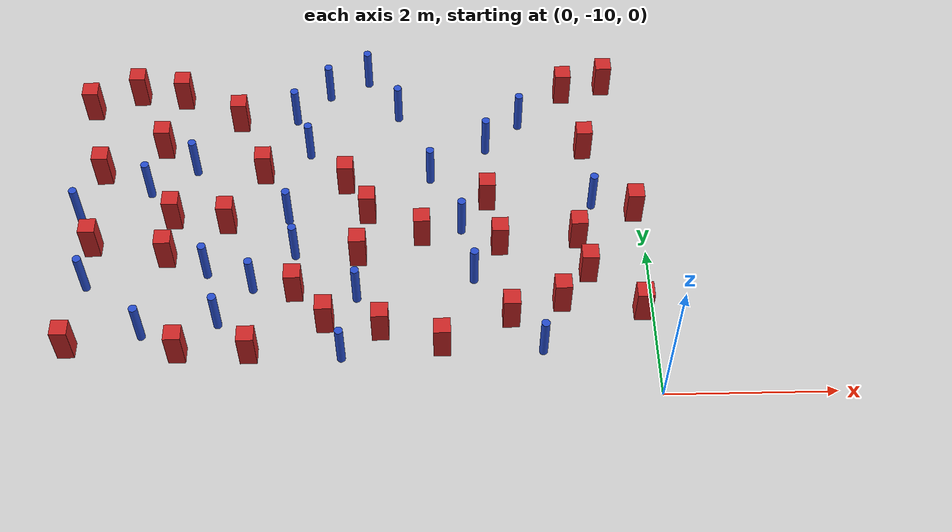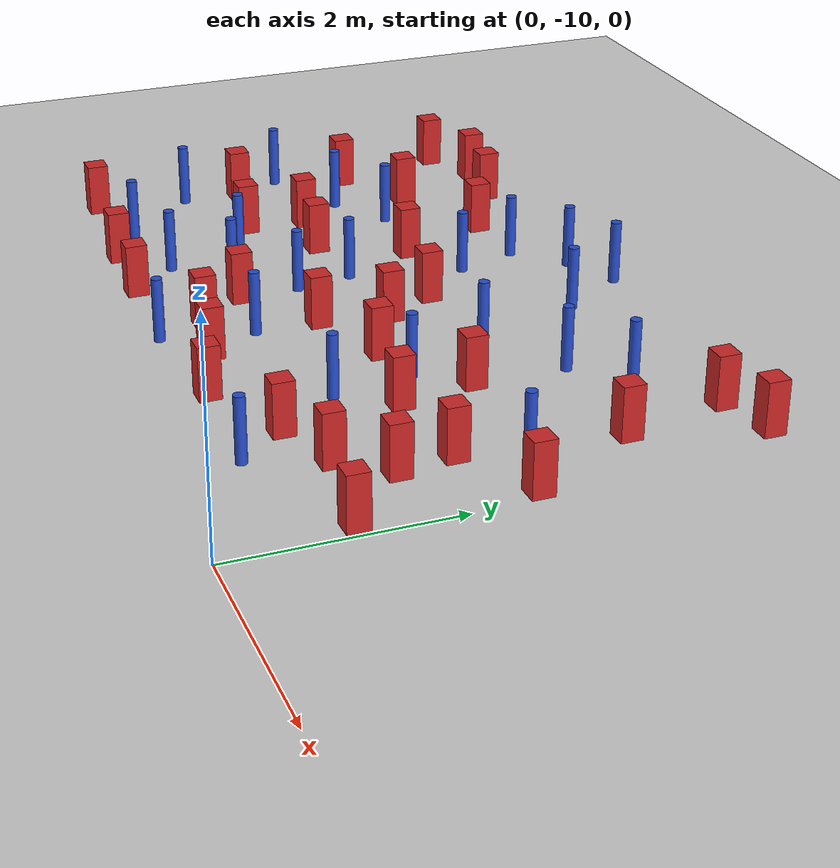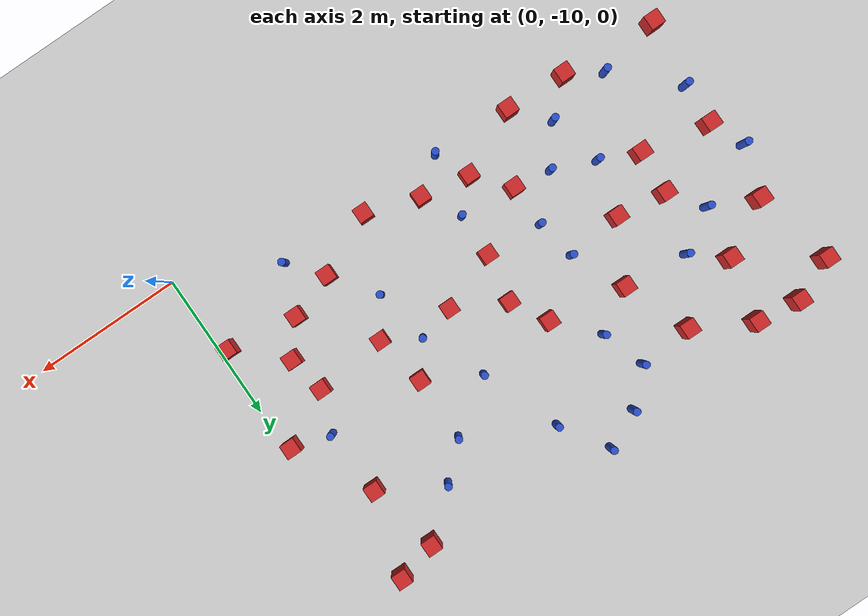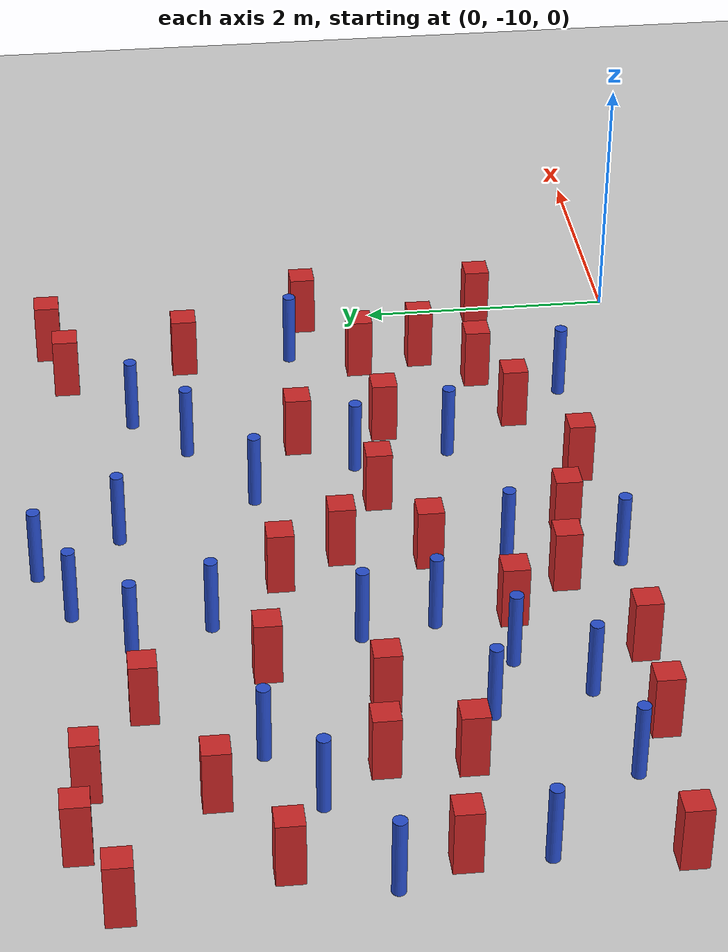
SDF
<sdf version="1.6">
 <world name="default">
  <model name="ground_plane">
   <static>1</static>
   <link name="link">
    <collision name="collision">
     <geometry><plane><normal>0 0 1</normal><size>100 100</size></plane></geometry>
     <surface><friction><ode><mu>100</mu><mu2>50</mu2></ode></friction></surface>
    </collision>
    <visual name="visual">
     <cast_shadows>0</cast_shadows>
     <geometry><plane><normal>0 0 1</normal><size>100 100</size></plane></geometry>
     <material>
      <ambient>1.0 1.0 1.0 1.0</ambient>
      <diffuse>0.8 0.8 0.8 1.0</diffuse>
      <specular>0.01 0.01 0.01 1.000000</specular>
     </material>
    </visual>
   </link>
  </model>
  <model name="square_post_obstacle3">
   <static>true</static>
   <pose>-2.73079464044 -7.73575036207 8.22691968438e-08 7.22125133819e-06 -7.54495500217e-07 2.29674213826e-05</pose>
   <link name="link">
    <pose>0 0 0.25 0 -0 0</pose>
    <inertial>
     <mass>100</mass>
     <inertia>
      <ixx>0.166667</ixx>
      <ixy>0</ixy>
      <ixz>0</ixz>
      <iyy>0.166667</iyy>
      <iyz>0</iyz>
      <izz>0.166667</izz>
     </inertia>
    </inertial>
    <collision name="collision"><geometry><box><size>.2 .2 .5</size></box></geometry></collision>
    <visual name="visual">
     <geometry><box><size>.2 .2 .5</size></box></geometry>
     <material>
      <script><name>Gazebo/Red</name><uri>file://media/materials/scripts/gazebo.material</uri></script>
     </material>
    </visual>
   </link>
  </model>
  <model name="pole_obstacle10">
   <static>true</static>
   <pose>-6.1325217128 -6.95859032905 2.88873142074e-08 -9.90536690842e-09 4.60219948965e-07 -1.20965994976e-07</pose>
   <link name="link">
    <pose>0 0 0.3 0 -0 0</pose>
    <inertial>
     <mass>1</mass>
     <inertia><ixx>0.145833</ixx><ixy>0</ixy><ixz>0</ixz><iyy>0.145833</iyy><iyz>0</iyz><izz>0.125</izz></inertia>
    </inertial>
    <collision name="collision">
     <geometry><cylinder><radius>0.05</radius><length>.6</length></cylinder></geometry>
    </collision>
    <visual name="visual">
     <geometry><cylinder><radius>0.05</radius><length>.6</length></cylinder></geometry>
     <material>
      <script><name>Gazebo/Blue</name><uri>file://media/materials/scripts/gazebo.material</uri></script>
     </material>
    </visual>
   </link>
  </model>
  <model name="square_post_obstacle10">
   <static>true</static>
   <pose>-5.83038132791 -5.41158651365 8.22691968438e-08 7.2212513382e-06 -7.54495500217e-07 2.29674213826e-05</pose>
   <link name="link">
    <pose>0 0 0.25 0 -0 0</pose>
    <inertial>
     <mass>100</mass>
     <inertia>
      <ixx>0.166667</ixx>
      <ixy>0</ixy>
      <ixz>0</ixz>
      <iyy>0.166667</iyy>
      <iyz>0</iyz>
      <izz>0.166667</izz>
     </inertia>
    </inertial>
    <collision name="collision"><geometry><box><size>.2 .2 .5</size></box></geometry></collision>
    <visual name="visual">
     <geometry><box><size>.2 .2 .5</size></box></geometry>
     <material>
      <script><name>Gazebo/Red</name><uri>file://media/materials/scripts/gazebo.material</uri></script>
     </material>
    </visual>
   </link>
  </model>
  <model name="square_post_obstacle12">
   <static>true</static>
   <pose>-4.7514764796 -9.38718271568 8.22691968438e-08 7.2212513382e-06 -7.54495500217e-07 2.29674213826e-05</pose>
   <link name="link">
    <pose>0 0 0.25 0 -0 0</pose>
    <inertial>
     <mass>100</mass>
     <inertia>
      <ixx>0.166667</ixx>
      <ixy>0</ixy>
      <ixz>0</ixz>
      <iyy>0.166667</iyy>
      <iyz>0</iyz>
      <izz>0.166667</izz>
     </inertia>
    </inertial>
    <collision name="collision"><geometry><box><size>.2 .2 .5</size></box></geometry></collision>
    <visual name="visual">
     <geometry><box><size>.2 .2 .5</size></box></geometry>
     <material>
      <script><name>Gazebo/Red</name><uri>file://media/materials/scripts/gazebo.material</uri></script>
     </material>
    </visual>
   </link>
  </model>
  <model name="pole_obstacle18">
   <static>true</static>
   <pose>-3.92017923229 -5.36507998804 2.88873142074e-08 -9.90536689859e-09 4.60219948989e-07 -1.20965994961e-07</pose>
   <link name="link">
    <pose>0 0 0.3 0 -0 0</pose>
    <inertial>
     <mass>1</mass>
     <inertia><ixx>0.145833</ixx><ixy>0</ixy><ixz>0</ixz><iyy>0.145833</iyy><iyz>0</iyz><izz>0.125</izz></inertia>
    </inertial>
    <collision name="collision">
     <geometry><cylinder><radius>0.05</radius><length>.6</length></cylinder></geometry>
    </collision>
    <visual name="visual">
     <geometry><cylinder><radius>0.05</radius><length>.6</length></cylinder></geometry>
     <material>
      <script><name>Gazebo/Blue</name><uri>file://media/materials/scripts/gazebo.material</uri></script>
     </material>
    </visual>
   </link>
  </model>
  <model name="square_post_obstacle16">
   <static>true</static>
   <pose>-1.08222233208 -8.74375302315 8.22691968438e-08 7.22125133819e-06 -7.54495500217e-07 2.29674213826e-05</pose>
   <link name="link">
    <pose>0 0 0.25 0 -0 0</pose>
    <inertial>
     <mass>100</mass>
     <inertia>
      <ixx>0.166667</ixx>
      <ixy>0</ixy>
      <ixz>0</ixz>
      <iyy>0.166667</iyy>
      <iyz>0</iyz>
      <izz>0.166667</izz>
     </inertia>
    </inertial>
    <collision name="collision"><geometry><box><size>.2 .2 .5</size></box></geometry></collision>
    <visual name="visual">
     <geometry><box><size>.2 .2 .5</size></box></geometry>
     <material>
      <script><name>Gazebo/Red</name><uri>file://media/materials/scripts/gazebo.material</uri></script>
     </material>
    </visual>
   </link>
  </model>
  <model name="pole_obstacle23">
   <static>true</static>
   <pose>-3.01974893808 -5.75024698525 2.88873142074e-08 -9.90536692062e-09 4.60219948937e-07 -1.20965994985e-07</pose>
   <link name="link">
    <pose>0 0 0.3 0 -0 0</pose>
    <inertial>
     <mass>1</mass>
     <inertia><ixx>0.145833</ixx><ixy>0</ixy><ixz>0</ixz><iyy>0.145833</iyy><iyz>0</iyz><izz>0.125</izz></inertia>
    </inertial>
    <collision name="collision">
     <geometry><cylinder><radius>0.05</radius><length>.6</length></cylinder></geometry>
    </collision>
    <visual name="visual">
     <geometry><cylinder><radius>0.05</radius><length>.6</length></cylinder></geometry>
     <material>
      <script><name>Gazebo/Blue</name><uri>file://media/materials/scripts/gazebo.material</uri></script>
     </material>
    </visual>
   </link>
  </model>
  <model name="pole_obstacle26">
   <static>true</static>
   <pose>-1.90550343805 -6.33166969712 2.88873142074e-08 -9.90536689852e-09 4.60219948989e-07 -1.2096599496e-07</pose>
   <link name="link">
    <pose>0 0 0.3 0 -0 0</pose>
    <inertial>
     <mass>1</mass>
     <inertia><ixx>0.145833</ixx><ixy>0</ixy><ixz>0</ixz><iyy>0.145833</iyy><iyz>0</iyz><izz>0.125</izz></inertia>
    </inertial>
    <collision name="collision">
     <geometry><cylinder><radius>0.05</radius><length>.6</length></cylinder></geometry>
    </collision>
    <visual name="visual">
     <geometry><cylinder><radius>0.05</radius><length>.6</length></cylinder></geometry>
     <material>
      <script><name>Gazebo/Blue</name><uri>file://media/materials/scripts/gazebo.material</uri></script>
     </material>
    </visual>
   </link>
  </model>
  <model name="pole_obstacle27">
   <static>true</static>
   <pose>-3.51837468244 -8.60839087726 2.88873142074e-08 -9.9053668994e-09 4.60219948987e-07 -1.20965994963e-07</pose>
   <link name="link">
    <pose>0 0 0.3 0 -0 0</pose>
    <inertial>
     <mass>1</mass>
     <inertia><ixx>0.145833</ixx><ixy>0</ixy><ixz>0</ixz><iyy>0.145833</iyy><iyz>0</iyz><izz>0.125</izz></inertia>
    </inertial>
    <collision name="collision">
     <geometry><cylinder><radius>0.05</radius><length>.6</length></cylinder></geometry>
    </collision>
    <visual name="visual">
     <geometry><cylinder><radius>0.05</radius><length>.6</length></cylinder></geometry>
     <material>
      <script><name>Gazebo/Blue</name><uri>file://media/materials/scripts/gazebo.material</uri></script>
     </material>
    </visual>
   </link>
  </model>
  <model name="square_post_obstacle36">
   <static>true</static>
   <pose>-0.328504360602 -5.28252003107 8.22691968438e-08 7.2212513382e-06 -7.54495500217e-07 2.29674213826e-05</pose>
   <link name="link">
    <pose>0 0 0.25 0 -0 0</pose>
    <inertial>
     <mass>100</mass>
     <inertia>
      <ixx>0.166667</ixx>
      <ixy>0</ixy>
      <ixz>0</ixz>
      <iyy>0.166667</iyy>
      <iyz>0</iyz>
      <izz>0.166667</izz>
     </inertia>
    </inertial>
    <collision name="collision"><geometry><box><size>.2 .2 .5</size></box></geometry></collision>
    <visual name="visual">
     <geometry><box><size>.2 .2 .5</size></box></geometry>
     <material>
      <script><name>Gazebo/Red</name><uri>file://media/materials/scripts/gazebo.material</uri></script>
     </material>
    </visual>
   </link>
  </model>
  <model name="square_post_obstacle38">
   <static>true</static>
   <pose>-1.69386002984 -8.95137766015 8.22691968438e-08 7.2212513382e-06 -7.54495500217e-07 2.29674213826e-05</pose>
   <link name="link">
    <pose>0 0 0.25 0 -0 0</pose>
    <inertial>
     <mass>100</mass>
     <inertia>
      <ixx>0.166667</ixx>
      <ixy>0</ixy>
      <ixz>0</ixz>
      <iyy>0.166667</iyy>
      <iyz>0</iyz>
      <izz>0.166667</izz>
     </inertia>
    </inertial>
    <collision name="collision"><geometry><box><size>.2 .2 .5</size></box></geometry></collision>
    <visual name="visual">
     <geometry><box><size>.2 .2 .5</size></box></geometry>
     <material>
      <script><name>Gazebo/Red</name><uri>file://media/materials/scripts/gazebo.material</uri></script>
     </material>
    </visual>
   </link>
  </model>
  <model name="pole_obstacle54">
   <static>true</static>
   <pose>-4.34515250309 -5.77988089212 2.88873142074e-08 -9.90536690842e-09 4.60219948965e-07 -1.20965994976e-07</pose>
   <link name="link">
    <pose>0 0 0.3 0 -0 0</pose>
    <inertial>
     <mass>1</mass>
     <inertia><ixx>0.145833</ixx><ixy>0</ixy><ixz>0</ixz><iyy>0.145833</iyy><iyz>0</iyz><izz>0.125</izz></inertia>
    </inertial>
    <collision name="collision">
     <geometry><cylinder><radius>0.05</radius><length>.6</length></cylinder></geometry>
    </collision>
    <visual name="visual">
     <geometry><cylinder><radius>0.05</radius><length>.6</length></cylinder></geometry>
     <material>
      <script><name>Gazebo/Blue</name><uri>file://media/materials/scripts/gazebo.material</uri></script>
     </material>
    </visual>
   </link>
  </model>
  <model name="pole_obstacle63">
   <static>true</static>
   <pose>-4.38031043211 -7.42041262322 2.88873142074e-08 -9.90536690842e-09 4.60219948965e-07 -1.20965994976e-07</pose>
   <link name="link">
    <pose>0 0 0.3 0 -0 0</pose>
    <inertial>
     <mass>1</mass>
     <inertia><ixx>0.145833</ixx><ixy>0</ixy><ixz>0</ixz><iyy>0.145833</iyy><iyz>0</iyz><izz>0.125</izz></inertia>
    </inertial>
    <collision name="collision">
     <geometry><cylinder><radius>0.05</radius><length>.6</length></cylinder></geometry>
    </collision>
    <visual name="visual">
     <geometry><cylinder><radius>0.05</radius><length>.6</length></cylinder></geometry>
     <material>
      <script><name>Gazebo/Blue</name><uri>file://media/materials/scripts/gazebo.material</uri></script>
     </material>
    </visual>
   </link>
  </model>
  <model name="pole_obstacle83">
   <static>true</static>
   <pose>-2.11278924796 -8.36695237378 2.88873142074e-08 -9.90536692318e-09 4.6021994893e-07 -1.20965994988e-07</pose>
   <link name="link">
    <pose>0 0 0.3 0 -0 0</pose>
    <inertial>
     <mass>1</mass>
     <inertia><ixx>0.145833</ixx><ixy>0</ixy><ixz>0</ixz><iyy>0.145833</iyy><iyz>0</iyz><izz>0.125</izz></inertia>
    </inertial>
    <collision name="collision">
     <geometry><cylinder><radius>0.05</radius><length>.6</length></cylinder></geometry>
    </collision>
    <visual name="visual">
     <geometry><cylinder><radius>0.05</radius><length>.6</length></cylinder></geometry>
     <material>
      <script><name>Gazebo/Blue</name><uri>file://media/materials/scripts/gazebo.material</uri></script>
     </material>
    </visual>
   </link>
  </model>
  <model name="square_post_obstacle73">
   <static>true</static>
   <pose>-4.70877246993 -6.71362364644 8.22691968438e-08 7.22125133819e-06 -7.54495500217e-07 2.29674213826e-05</pose>
   <link name="link">
    <pose>0 0 0.25 0 -0 0</pose>
    <inertial>
     <mass>100</mass>
     <inertia>
      <ixx>0.166667</ixx>
      <ixy>0</ixy>
      <ixz>0</ixz>
      <iyy>0.166667</iyy>
      <iyz>0</iyz>
      <izz>0.166667</izz>
     </inertia>
    </inertial>
    <collision name="collision"><geometry><box><size>.2 .2 .5</size></box></geometry></collision>
    <visual name="visual">
     <geometry><box><size>.2 .2 .5</size></box></geometry>
     <material>
      <script><name>Gazebo/Red</name><uri>file://media/materials/scripts/gazebo.material</uri></script>
     </material>
    </visual>
   </link>
  </model>
  <model name="pole_obstacle87">
   <static>true</static>
   <pose>-3.41714059134 -5.1272485014 2.88873142074e-08 -9.90536689859e-09 4.60219948989e-07 -1.20965994961e-07</pose>
   <link name="link">
    <pose>0 0 0.3 0 -0 0</pose>
    <inertial>
     <mass>1</mass>
     <inertia><ixx>0.145833</ixx><ixy>0</ixy><ixz>0</ixz><iyy>0.145833</iyy><iyz>0</iyz><izz>0.125</izz></inertia>
    </inertial>
    <collision name="collision">
     <geometry><cylinder><radius>0.05</radius><length>.6</length></cylinder></geometry>
    </collision>
    <visual name="visual">
     <geometry><cylinder><radius>0.05</radius><length>.6</length></cylinder></geometry>
     <material>
      <script><name>Gazebo/Blue</name><uri>file://media/materials/scripts/gazebo.material</uri></script>
     </material>
    </visual>
   </link>
  </model>
  <model name="square_post_obstacle79">
   <static>true</static>
   <pose>-6.99870042464 -5.57825343169 8.22691968438e-08 7.22125133819e-06 -7.54495500217e-07 2.29674213826e-05</pose>
   <link name="link">
    <pose>0 0 0.25 0 -0 0</pose>
    <inertial>
     <mass>100</mass>
     <inertia>
      <ixx>0.166667</ixx>
      <ixy>0</ixy>
      <ixz>0</ixz>
      <iyy>0.166667</iyy>
      <iyz>0</iyz>
      <izz>0.166667</izz>
     </inertia>
    </inertial>
    <collision name="collision"><geometry><box><size>.2 .2 .5</size></box></geometry></collision>
    <visual name="visual">
     <geometry><box><size>.2 .2 .5</size></box></geometry>
     <material>
      <script><name>Gazebo/Red</name><uri>file://media/materials/scripts/gazebo.material</uri></script>
     </material>
    </visual>
   </link>
  </model>
  <model name="square_post_obstacle81">
   <static>true</static>
   <pose>-3.88198724504 -8.97816053009 8.22691968438e-08 7.22125133819e-06 -7.54495500217e-07 2.29674213826e-05</pose>
   <link name="link">
    <pose>0 0 0.25 0 -0 0</pose>
    <inertial>
     <mass>100</mass>
     <inertia>
      <ixx>0.166667</ixx>
      <ixy>0</ixy>
      <ixz>0</ixz>
      <iyy>0.166667</iyy>
      <iyz>0</iyz>
      <izz>0.166667</izz>
     </inertia>
    </inertial>
    <collision name="collision"><geometry><box><size>.2 .2 .5</size></box></geometry></collision>
    <visual name="visual">
     <geometry><box><size>.2 .2 .5</size></box></geometry>
     <material>
      <script><name>Gazebo/Red</name><uri>file://media/materials/scripts/gazebo.material</uri></script>
     </material>
    </visual>
   </link>
  </model>
  <model name="pole_obstacle90">
   <static>true</static>
   <pose>-5.58245257167 -6.61304634531 2.88873142074e-08 -9.90536690842e-09 4.60219948965e-07 -1.20965994976e-07</pose>
   <link name="link">
    <pose>0 0 0.3 0 -0 0</pose>
    <inertial>
     <mass>1</mass>
     <inertia><ixx>0.145833</ixx><ixy>0</ixy><ixz>0</ixz><iyy>0.145833</iyy><iyz>0</iyz><izz>0.125</izz></inertia>
    </inertial>
    <collision name="collision">
     <geometry><cylinder><radius>0.05</radius><length>.6</length></cylinder></geometry>
    </collision>
    <visual name="visual">
     <geometry><cylinder><radius>0.05</radius><length>.6</length></cylinder></geometry>
     <material>
      <script><name>Gazebo/Blue</name><uri>file://media/materials/scripts/gazebo.material</uri></script>
     </material>
    </visual>
   </link>
  </model>
  <model name="square_post_obstacle84">
   <static>true</static>
   <pose>-4.26040948344 -8.52993712945 8.22691968438e-08 7.22125133819e-06 -7.54495500217e-07 2.29674213826e-05</pose>
   <link name="link">
    <pose>0 0 0.25 0 -0 0</pose>
    <inertial>
     <mass>100</mass>
     <inertia>
      <ixx>0.166667</ixx>
      <ixy>0</ixy>
      <ixz>0</ixz>
      <iyy>0.166667</iyy>
      <iyz>0</iyz>
      <izz>0.166667</izz>
     </inertia>
    </inertial>
    <collision name="collision"><geometry><box><size>.2 .2 .5</size></box></geometry></collision>
    <visual name="visual">
     <geometry><box><size>.2 .2 .5</size></box></geometry>
     <material>
      <script><name>Gazebo/Red</name><uri>file://media/materials/scripts/gazebo.material</uri></script>
     </material>
    </visual>
   </link>
  </model>
  <model name="pole_obstacle92">
   <static>true</static>
   <pose>-3.68303842022 -9.44137427537 2.88873142074e-08 -9.90536692318e-09 4.6021994893e-07 -1.20965994988e-07</pose>
   <link name="link">
    <pose>0 0 0.3 0 -0 0</pose>
    <inertial>
     <mass>1</mass>
     <inertia><ixx>0.145833</ixx><ixy>0</ixy><ixz>0</ixz><iyy>0.145833</iyy><iyz>0</iyz><izz>0.125</izz></inertia>
    </inertial>
    <collision name="collision">
     <geometry><cylinder><radius>0.05</radius><length>.6</length></cylinder></geometry>
    </collision>
    <visual name="visual">
     <geometry><cylinder><radius>0.05</radius><length>.6</length></cylinder></geometry>
     <material>
      <script><name>Gazebo/Blue</name><uri>file://media/materials/scripts/gazebo.material</uri></script>
     </material>
    </visual>
   </link>
  </model>
  <model name="square_post_obstacle89">
   <static>true</static>
   <pose>-5.82998692314 -7.99534103352 8.22691968438e-08 7.2212513382e-06 -7.54495500217e-07 2.29674213826e-05</pose>
   <link name="link">
    <pose>0 0 0.25 0 -0 0</pose>
    <inertial>
     <mass>100</mass>
     <inertia>
      <ixx>0.166667</ixx>
      <ixy>0</ixy>
      <ixz>0</ixz>
      <iyy>0.166667</iyy>
      <iyz>0</iyz>
      <izz>0.166667</izz>
     </inertia>
    </inertial>
    <collision name="collision"><geometry><box><size>.2 .2 .5</size></box></geometry></collision>
    <visual name="visual">
     <geometry><box><size>.2 .2 .5</size></box></geometry>
     <material>
      <script><name>Gazebo/Red</name><uri>file://media/materials/scripts/gazebo.material</uri></script>
     </material>
    </visual>
   </link>
  </model>
  <model name="pole_obstacle102">
   <static>true</static>
   <pose>-1.46734934291 -5.92242371016 2.88873142074e-08 -9.90536689852e-09 4.60219948989e-07 -1.2096599496e-07</pose>
   <link name="link">
    <pose>0 0 0.3 0 -0 0</pose>
    <inertial>
     <mass>1</mass>
     <inertia><ixx>0.145833</ixx><ixy>0</ixy><ixz>0</ixz><iyy>0.145833</iyy><iyz>0</iyz><izz>0.125</izz></inertia>
    </inertial>
    <collision name="collision">
     <geometry><cylinder><radius>0.05</radius><length>.6</length></cylinder></geometry>
    </collision>
    <visual name="visual">
     <geometry><cylinder><radius>0.05</radius><length>.6</length></cylinder></geometry>
     <material>
      <script><name>Gazebo/Blue</name><uri>file://media/materials/scripts/gazebo.material</uri></script>
     </material>
    </visual>
   </link>
  </model>
  <model name="square_post_obstacle98">
   <static>true</static>
   <pose>-5.12732766851 -7.49774417018 8.22691968438e-08 7.22125133819e-06 -7.54495500217e-07 2.29674213826e-05</pose>
   <link name="link">
    <pose>0 0 0.25 0 -0 0</pose>
    <inertial>
     <mass>100</mass>
     <inertia>
      <ixx>0.166667</ixx>
      <ixy>0</ixy>
      <ixz>0</ixz>
      <iyy>0.166667</iyy>
      <iyz>0</iyz>
      <izz>0.166667</izz>
     </inertia>
    </inertial>
    <collision name="collision"><geometry><box><size>.2 .2 .5</size></box></geometry></collision>
    <visual name="visual">
     <geometry><box><size>.2 .2 .5</size></box></geometry>
     <material>
      <script><name>Gazebo/Red</name><uri>file://media/materials/scripts/gazebo.material</uri></script>
     </material>
    </visual>
   </link>
  </model>
  <model name="pole_obstacle104">
   <static>true</static>
   <pose>-4.27780715245 -7.96412719039 2.88873142074e-08 -9.90536690264e-09 4.60219948979e-07 -1.20965994965e-07</pose>
   <link name="link">
    <pose>0 0 0.3 0 -0 0</pose>
    <inertial>
     <mass>1</mass>
     <inertia><ixx>0.145833</ixx><ixy>0</ixy><ixz>0</ixz><iyy>0.145833</iyy><iyz>0</iyz><izz>0.125</izz></inertia>
    </inertial>
    <collision name="collision">
     <geometry><cylinder><radius>0.05</radius><length>.6</length></cylinder></geometry>
    </collision>
    <visual name="visual">
     <geometry><cylinder><radius>0.05</radius><length>.6</length></cylinder></geometry>
     <material>
      <script><name>Gazebo/Blue</name><uri>file://media/materials/scripts/gazebo.material</uri></script>
     </material>
    </visual>
   </link>
  </model>
  <model name="pole_obstacle105">
   <static>true</static>
   <pose>-5.14939158364 -8.94875034224 2.88873142074e-08 -9.9053668967e-09 4.60219948993e-07 -1.20965994957e-07</pose>
   <link name="link">
    <pose>0 0 0.3 0 -0 0</pose>
    <inertial>
     <mass>1</mass>
     <inertia><ixx>0.145833</ixx><ixy>0</ixy><ixz>0</ixz><iyy>0.145833</iyy><iyz>0</iyz><izz>0.125</izz></inertia>
    </inertial>
    <collision name="collision">
     <geometry><cylinder><radius>0.05</radius><length>.6</length></cylinder></geometry>
    </collision>
    <visual name="visual">
     <geometry><cylinder><radius>0.05</radius><length>.6</length></cylinder></geometry>
     <material>
      <script><name>Gazebo/Blue</name><uri>file://media/materials/scripts/gazebo.material</uri></script>
     </material>
    </visual>
   </link>
  </model>
  <model name="pole_obstacle107">
   <static>true</static>
   <pose>-2.24457041051 -7.61838369653 2.88873142074e-08 -9.90536689859e-09 4.60219948989e-07 -1.20965994961e-07</pose>
   <link name="link">
    <pose>0 0 0.3 0 -0 0</pose>
    <inertial>
     <mass>1</mass>
     <inertia><ixx>0.145833</ixx><ixy>0</ixy><ixz>0</ixz><iyy>0.145833</iyy><iyz>0</iyz><izz>0.125</izz></inertia>
    </inertial>
    <collision name="collision">
     <geometry><cylinder><radius>0.05</radius><length>.6</length></cylinder></geometry>
    </collision>
    <visual name="visual">
     <geometry><cylinder><radius>0.05</radius><length>.6</length></cylinder></geometry>
     <material>
      <script><name>Gazebo/Blue</name><uri>file://media/materials/scripts/gazebo.material</uri></script>
     </material>
    </visual>
   </link>
  </model>
  <model name="pole_obstacle118">
   <static>true</static>
   <pose>-5.32962824016 -8.2214934062 2.88873142074e-08 -9.9053668967e-09 4.60219948993e-07 -1.20965994957e-07</pose>
   <link name="link">
    <pose>0 0 0.3 0 -0 0</pose>
    <inertial>
     <mass>1</mass>
     <inertia><ixx>0.145833</ixx><ixy>0</ixy><ixz>0</ixz><iyy>0.145833</iyy><iyz>0</iyz><izz>0.125</izz></inertia>
    </inertial>
    <collision name="collision">
     <geometry><cylinder><radius>0.05</radius><length>.6</length></cylinder></geometry>
    </collision>
    <visual name="visual">
     <geometry><cylinder><radius>0.05</radius><length>.6</length></cylinder></geometry>
     <material>
      <script><name>Gazebo/Blue</name><uri>file://media/materials/scripts/gazebo.material</uri></script>
     </material>
    </visual>
   </link>
  </model>
  <model name="square_post_obstacle120">
   <static>true</static>
   <pose>-0.869060389575 -5.41750941684 8.22691968438e-08 7.2212513382e-06 -7.54495500217e-07 2.29674213826e-05</pose>
   <link name="link">
    <pose>0 0 0.25 0 -0 0</pose>
    <inertial>
     <mass>100</mass>
     <inertia>
      <ixx>0.166667</ixx>
      <ixy>0</ixy>
      <ixz>0</ixz>
      <iyy>0.166667</iyy>
      <iyz>0</iyz>
      <izz>0.166667</izz>
     </inertia>
    </inertial>
    <collision name="collision"><geometry><box><size>.2 .2 .5</size></box></geometry></collision>
    <visual name="visual">
     <geometry><box><size>.2 .2 .5</size></box></geometry>
     <material>
      <script><name>Gazebo/Red</name><uri>file://media/materials/scripts/gazebo.material</uri></script>
     </material>
    </visual>
   </link>
  </model>
  <model name="square_post_obstacle124">
   <static>true</static>
   <pose>-0.660330267124 -6.3876916477 8.22691968438e-08 7.2212513382e-06 -7.54495500217e-07 2.29674213826e-05</pose>
   <link name="link">
    <pose>0 0 0.25 0 -0 0</pose>
    <inertial>
     <mass>100</mass>
     <inertia>
      <ixx>0.166667</ixx>
      <ixy>0</ixy>
      <ixz>0</ixz>
      <iyy>0.166667</iyy>
      <iyz>0</iyz>
      <izz>0.166667</izz>
     </inertia>
    </inertial>
    <collision name="collision"><geometry><box><size>.2 .2 .5</size></box></geometry></collision>
    <visual name="visual">
     <geometry><box><size>.2 .2 .5</size></box></geometry>
     <material>
      <script><name>Gazebo/Red</name><uri>file://media/materials/scripts/gazebo.material</uri></script>
     </material>
    </visual>
   </link>
  </model>
  <model name="square_post_obstacle129">
   <static>true</static>
   <pose>-3.67725668986 -6.89757163854 8.22691968438e-08 7.2212513382e-06 -7.54495500217e-07 2.29674213826e-05</pose>
   <link name="link">
    <pose>0 0 0.25 0 -0 0</pose>
    <inertial>
     <mass>100</mass>
     <inertia>
      <ixx>0.166667</ixx>
      <ixy>0</ixy>
      <ixz>0</ixz>
      <iyy>0.166667</iyy>
      <iyz>0</iyz>
      <izz>0.166667</izz>
     </inertia>
    </inertial>
    <collision name="collision"><geometry><box><size>.2 .2 .5</size></box></geometry></collision>
    <visual name="visual">
     <geometry><box><size>.2 .2 .5</size></box></geometry>
     <material>
      <script><name>Gazebo/Red</name><uri>file://media/materials/scripts/gazebo.material</uri></script>
     </material>
    </visual>
   </link>
  </model>
  <model name="pole_obstacle137">
   <static>true</static>
   <pose>-0.611161564463 -7.26310369831 2.88873142074e-08 -9.90536689661e-09 4.60219948993e-07 -1.20965994957e-07</pose>
   <link name="link">
    <pose>0 0 0.3 0 -0 0</pose>
    <inertial>
     <mass>1</mass>
     <inertia><ixx>0.145833</ixx><ixy>0</ixy><ixz>0</ixz><iyy>0.145833</iyy><iyz>0</iyz><izz>0.125</izz></inertia>
    </inertial>
    <collision name="collision">
     <geometry><cylinder><radius>0.05</radius><length>.6</length></cylinder></geometry>
    </collision>
    <visual name="visual">
     <geometry><cylinder><radius>0.05</radius><length>.6</length></cylinder></geometry>
     <material>
      <script><name>Gazebo/Blue</name><uri>file://media/materials/scripts/gazebo.material</uri></script>
     </material>
    </visual>
   </link>
  </model>
  <model name="square_post_obstacle136">
   <static>true</static>
   <pose>-1.78664620834 -7.895583148 8.22691968438e-08 7.2212513382e-06 -7.54495500217e-07 2.29674213826e-05</pose>
   <link name="link">
    <pose>0 0 0.25 0 -0 0</pose>
    <inertial>
     <mass>100</mass>
     <inertia>
      <ixx>0.166667</ixx>
      <ixy>0</ixy>
      <ixz>0</ixz>
      <iyy>0.166667</iyy>
      <iyz>0</iyz>
      <izz>0.166667</izz>
     </inertia>
    </inertial>
    <collision name="collision"><geometry><box><size>.2 .2 .5</size></box></geometry></collision>
    <visual name="visual">
     <geometry><box><size>.2 .2 .5</size></box></geometry>
     <material>
      <script><name>Gazebo/Red</name><uri>file://media/materials/scripts/gazebo.material</uri></script>
     </material>
    </visual>
   </link>
  </model>
  <model name="square_post_obstacle138">
   <static>true</static>
   <pose>-5.79499942724 -7.40681697955 8.22691968438e-08 7.22125133819e-06 -7.54495500217e-07 2.29674213826e-05</pose>
   <link name="link">
    <pose>0 0 0.25 0 -0 0</pose>
    <inertial>
     <mass>100</mass>
     <inertia>
      <ixx>0.166667</ixx>
      <ixy>0</ixy>
      <ixz>0</ixz>
      <iyy>0.166667</iyy>
      <iyz>0</iyz>
      <izz>0.166667</izz>
     </inertia>
    </inertial>
    <collision name="collision"><geometry><box><size>.2 .2 .5</size></box></geometry></collision>
    <visual name="visual">
     <geometry><box><size>.2 .2 .5</size></box></geometry>
     <material>
      <script><name>Gazebo/Red</name><uri>file://media/materials/scripts/gazebo.material</uri></script>
     </material>
    </visual>
   </link>
  </model>
  <model name="pole_obstacle142">
   <static>true</static>
   <pose>-2.61750184206 -6.80412559151 2.88873142074e-08 -9.90536689859e-09 4.60219948989e-07 -1.20965994961e-07</pose>
   <link name="link">
    <pose>0 0 0.3 0 -0 0</pose>
    <inertial>
     <mass>1</mass>
     <inertia><ixx>0.145833</ixx><ixy>0</ixy><ixz>0</ixz><iyy>0.145833</iyy><iyz>0</iyz><izz>0.125</izz></inertia>
    </inertial>
    <collision name="collision">
     <geometry><cylinder><radius>0.05</radius><length>.6</length></cylinder></geometry>
    </collision>
    <visual name="visual">
     <geometry><cylinder><radius>0.05</radius><length>.6</length></cylinder></geometry>
     <material>
      <script><name>Gazebo/Blue</name><uri>file://media/materials/scripts/gazebo.material</uri></script>
     </material>
    </visual>
   </link>
  </model>
  <model name="square_post_obstacle140">
   <static>true</static>
   <pose>-2.51348899103 -9.33143986583 8.22691968438e-08 7.22125133819e-06 -7.54495500217e-07 2.29674213826e-05</pose>
   <link name="link">
    <pose>0 0 0.25 0 -0 0</pose>
    <inertial>
     <mass>100</mass>
     <inertia>
      <ixx>0.166667</ixx>
      <ixy>0</ixy>
      <ixz>0</ixz>
      <iyy>0.166667</iyy>
      <iyz>0</iyz>
      <izz>0.166667</izz>
     </inertia>
    </inertial>
    <collision name="collision"><geometry><box><size>.2 .2 .5</size></box></geometry></collision>
    <visual name="visual">
     <geometry><box><size>.2 .2 .5</size></box></geometry>
     <material>
      <script><name>Gazebo/Red</name><uri>file://media/materials/scripts/gazebo.material</uri></script>
     </material>
    </visual>
   </link>
  </model>
  <model name="square_post_obstacle141">
   <static>true</static>
   <pose>-6.87471546286 -9.2624492832 8.22691968438e-08 7.2212513382e-06 -7.54495500217e-07 2.29674213826e-05</pose>
   <link name="link">
    <pose>0 0 0.25 0 -0 0</pose>
    <inertial>
     <mass>100</mass>
     <inertia>
      <ixx>0.166667</ixx>
      <ixy>0</ixy>
      <ixz>0</ixz>
      <iyy>0.166667</iyy>
      <iyz>0</iyz>
      <izz>0.166667</izz>
     </inertia>
    </inertial>
    <collision name="collision"><geometry><box><size>.2 .2 .5</size></box></geometry></collision>
    <visual name="visual">
     <geometry><box><size>.2 .2 .5</size></box></geometry>
     <material>
      <script><name>Gazebo/Red</name><uri>file://media/materials/scripts/gazebo.material</uri></script>
     </material>
    </visual>
   </link>
  </model>
  <model name="pole_obstacle157">
   <static>true</static>
   <pose>-6.77281864752 -8.37552791009 2.88873142074e-08 -9.9053668967e-09 4.60219948993e-07 -1.20965994957e-07</pose>
   <link name="link">
    <pose>0 0 0.3 0 -0 0</pose>
    <inertial>
     <mass>1</mass>
     <inertia><ixx>0.145833</ixx><ixy>0</ixy><ixz>0</ixz><iyy>0.145833</iyy><iyz>0</iyz><izz>0.125</izz></inertia>
    </inertial>
    <collision name="collision">
     <geometry><cylinder><radius>0.05</radius><length>.6</length></cylinder></geometry>
    </collision>
    <visual name="visual">
     <geometry><cylinder><radius>0.05</radius><length>.6</length></cylinder></geometry>
     <material>
      <script><name>Gazebo/Blue</name><uri>file://media/materials/scripts/gazebo.material</uri></script>
     </material>
    </visual>
   </link>
  </model>
  <model name="square_post_obstacle156">
   <static>true</static>
   <pose>-0.826501733347 -7.81352151829 8.22691968438e-08 7.2212513382e-06 -7.54495500217e-07 2.29674213826e-05</pose>
   <link name="link">
    <pose>0 0 0.25 0 -0 0</pose>
    <inertial>
     <mass>100</mass>
     <inertia>
      <ixx>0.166667</ixx>
      <ixy>0</ixy>
      <ixz>0</ixz>
      <iyy>0.166667</iyy>
      <iyz>0</iyz>
      <izz>0.166667</izz>
     </inertia>
    </inertial>
    <collision name="collision"><geometry><box><size>.2 .2 .5</size></box></geometry></collision>
    <visual name="visual">
     <geometry><box><size>.2 .2 .5</size></box></geometry>
     <material>
      <script><name>Gazebo/Red</name><uri>file://media/materials/scripts/gazebo.material</uri></script>
     </material>
    </visual>
   </link>
  </model>
  <model name="pole_obstacle167">
   <static>true</static>
   <pose>-6.03419305025 -9.09054489553 2.88873142074e-08 -9.9053668967e-09 4.60219948993e-07 -1.20965994957e-07</pose>
   <link name="link">
    <pose>0 0 0.3 0 -0 0</pose>
    <inertial>
     <mass>1</mass>
     <inertia><ixx>0.145833</ixx><ixy>0</ixy><ixz>0</ixz><iyy>0.145833</iyy><iyz>0</iyz><izz>0.125</izz></inertia>
    </inertial>
    <collision name="collision">
     <geometry><cylinder><radius>0.05</radius><length>.6</length></cylinder></geometry>
    </collision>
    <visual name="visual">
     <geometry><cylinder><radius>0.05</radius><length>.6</length></cylinder></geometry>
     <material>
      <script><name>Gazebo/Blue</name><uri>file://media/materials/scripts/gazebo.material</uri></script>
     </material>
    </visual>
   </link>
  </model>
  <model name="square_post_obstacle167">
   <static>true</static>
   <pose>-0.102880108438 -7.41460042741 8.22691968438e-08 7.2212513382e-06 -7.54495500217e-07 2.29674213826e-05</pose>
   <link name="link">
    <pose>0 0 0.25 0 -0 0</pose>
    <inertial>
     <mass>100</mass>
     <inertia>
      <ixx>0.166667</ixx>
      <ixy>0</ixy>
      <ixz>0</ixz>
      <iyy>0.166667</iyy>
      <iyz>0</iyz>
      <izz>0.166667</izz>
     </inertia>
    </inertial>
    <collision name="collision"><geometry><box><size>.2 .2 .5</size></box></geometry></collision>
    <visual name="visual">
     <geometry><box><size>.2 .2 .5</size></box></geometry>
     <material>
      <script><name>Gazebo/Red</name><uri>file://media/materials/scripts/gazebo.material</uri></script>
     </material>
    </visual>
   </link>
  </model>
  <model name="square_post_obstacle171">
   <static>true</static>
   <pose>-0.136339454812 -8.88214589656 8.22691968438e-08 7.2212513382e-06 -7.54495500217e-07 2.29674213826e-05</pose>
   <link name="link">
    <pose>0 0 0.25 0 -0 0</pose>
    <inertial>
     <mass>100</mass>
     <inertia>
      <ixx>0.166667</ixx>
      <ixy>0</ixy>
      <ixz>0</ixz>
      <iyy>0.166667</iyy>
      <iyz>0</iyz>
      <izz>0.166667</izz>
     </inertia>
    </inertial>
    <collision name="collision"><geometry><box><size>.2 .2 .5</size></box></geometry></collision>
    <visual name="visual">
     <geometry><box><size>.2 .2 .5</size></box></geometry>
     <material>
      <script><name>Gazebo/Red</name><uri>file://media/materials/scripts/gazebo.material</uri></script>
     </material>
    </visual>
   </link>
  </model>
  <model name="square_post_obstacle177">
   <static>true</static>
   <pose>-3.22980779101 -9.09786440177 8.22691968438e-08 7.22125133819e-06 -7.54495500217e-07 2.29674213826e-05</pose>
   <link name="link">
    <pose>0 0 0.25 0 -0 0</pose>
    <inertial>
     <mass>100</mass>
     <inertia>
      <ixx>0.166667</ixx>
      <ixy>0</ixy>
      <ixz>0</ixz>
      <iyy>0.166667</iyy>
      <iyz>0</iyz>
      <izz>0.166667</izz>
     </inertia>
    </inertial>
    <collision name="collision"><geometry><box><size>.2 .2 .5</size></box></geometry></collision>
    <visual name="visual">
     <geometry><box><size>.2 .2 .5</size></box></geometry>
     <material>
      <script><name>Gazebo/Red</name><uri>file://media/materials/scripts/gazebo.material</uri></script>
     </material>
    </visual>
   </link>
  </model>
  <model name="square_post_obstacle180">
   <static>true</static>
   <pose>-6.75099506057 -7.81017083048 8.22691968438e-08 7.22125133819e-06 -7.54495500217e-07 2.29674213826e-05</pose>
   <link name="link">
    <pose>0 0 0.25 0 -0 0</pose>
    <inertial>
     <mass>100</mass>
     <inertia>
      <ixx>0.166667</ixx>
      <ixy>0</ixy>
      <ixz>0</ixz>
      <iyy>0.166667</iyy>
      <iyz>0</iyz>
      <izz>0.166667</izz>
     </inertia>
    </inertial>
    <collision name="collision"><geometry><box><size>.2 .2 .5</size></box></geometry></collision>
    <visual name="visual">
     <geometry><box><size>.2 .2 .5</size></box></geometry>
     <material>
      <script><name>Gazebo/Red</name><uri>file://media/materials/scripts/gazebo.material</uri></script>
     </material>
    </visual>
   </link>
  </model>
  <model name="square_post_obstacle181">
   <static>true</static>
   <pose>-0.734913652954 -8.32202366743 8.22691968438e-08 7.22125133819e-06 -7.54495500217e-07 2.29674213826e-05</pose>
   <link name="link">
    <pose>0 0 0.25 0 -0 0</pose>
    <inertial>
     <mass>100</mass>
     <inertia>
      <ixx>0.166667</ixx>
      <ixy>0</ixy>
      <ixz>0</ixz>
      <iyy>0.166667</iyy>
      <iyz>0</iyz>
      <izz>0.166667</izz>
     </inertia>
    </inertial>
    <collision name="collision"><geometry><box><size>.2 .2 .5</size></box></geometry></collision>
    <visual name="visual">
     <geometry><box><size>.2 .2 .5</size></box></geometry>
     <material>
      <script><name>Gazebo/Red</name><uri>file://media/materials/scripts/gazebo.material</uri></script>
     </material>
    </visual>
   </link>
  </model>
  <model name="pole_obstacle182">
   <static>true</static>
   <pose>-1.33574629968 -9.39110331189 2.88873142074e-08 -9.90536690474e-09 4.60219948974e-07 -1.2096599497e-07</pose>
   <link name="link">
    <pose>0 0 0.3 0 -0 0</pose>
    <inertial>
     <mass>1</mass>
     <inertia><ixx>0.145833</ixx><ixy>0</ixy><ixz>0</ixz><iyy>0.145833</iyy><iyz>0</iyz><izz>0.125</izz></inertia>
    </inertial>
    <collision name="collision">
     <geometry><cylinder><radius>0.05</radius><length>.6</length></cylinder></geometry>
    </collision>
    <visual name="visual">
     <geometry><cylinder><radius>0.05</radius><length>.6</length></cylinder></geometry>
     <material>
      <script><name>Gazebo/Blue</name><uri>file://media/materials/scripts/gazebo.material</uri></script>
     </material>
    </visual>
   </link>
  </model>
  <model name="square_post_obstacle192">
   <static>true</static>
   <pose>-6.41789577515 -5.33360523452 8.22691968438e-08 7.22125133819e-06 -7.54495500217e-07 2.29674213826e-05</pose>
   <link name="link">
    <pose>0 0 0.25 0 -0 0</pose>
    <inertial>
     <mass>100</mass>
     <inertia>
      <ixx>0.166667</ixx>
      <ixy>0</ixy>
      <ixz>0</ixz>
      <iyy>0.166667</iyy>
      <iyz>0</iyz>
      <izz>0.166667</izz>
     </inertia>
    </inertial>
    <collision name="collision"><geometry><box><size>.2 .2 .5</size></box></geometry></collision>
    <visual name="visual">
     <geometry><box><size>.2 .2 .5</size></box></geometry>
     <material>
      <script><name>Gazebo/Red</name><uri>file://media/materials/scripts/gazebo.material</uri></script>
     </material>
    </visual>
   </link>
  </model>
  <model name="pole_obstacle187">
   <static>true</static>
   <pose>-4.76626462573 -8.45305773457 2.88873142074e-08 -9.9053668967e-09 4.60219948993e-07 -1.20965994957e-07</pose>
   <link name="link">
    <pose>0 0 0.3 0 -0 0</pose>
    <inertial>
     <mass>1</mass>
     <inertia><ixx>0.145833</ixx><ixy>0</ixy><ixz>0</ixz><iyy>0.145833</iyy><iyz>0</iyz><izz>0.125</izz></inertia>
    </inertial>
    <collision name="collision">
     <geometry><cylinder><radius>0.05</radius><length>.6</length></cylinder></geometry>
    </collision>
    <visual name="visual">
     <geometry><cylinder><radius>0.05</radius><length>.6</length></cylinder></geometry>
     <material>
      <script><name>Gazebo/Blue</name><uri>file://media/materials/scripts/gazebo.material</uri></script>
     </material>
    </visual>
   </link>
  </model>
  <model name="square_post_obstacle202">
   <static>true</static>
   <pose>-6.00773366971 -6.2611084558 8.22691968438e-08 7.22125133819e-06 -7.54495500217e-07 2.29674213826e-05</pose>
   <link name="link">
    <pose>0 0 0.25 0 -0 0</pose>
    <inertial>
     <mass>100</mass>
     <inertia>
      <ixx>0.166667</ixx>
      <ixy>0</ixy>
      <ixz>0</ixz>
      <iyy>0.166667</iyy>
      <iyz>0</iyz>
      <izz>0.166667</izz>
     </inertia>
    </inertial>
    <collision name="collision"><geometry><box><size>.2 .2 .5</size></box></geometry></collision>
    <visual name="visual">
     <geometry><box><size>.2 .2 .5</size></box></geometry>
     <material>
      <script><name>Gazebo/Red</name><uri>file://media/materials/scripts/gazebo.material</uri></script>
     </material>
    </visual>
   </link>
  </model>
  <model name="square_post_obstacle205">
   <static>true</static>
   <pose>-5.06807253938 -5.83013619295 8.22691968438e-08 7.22125133819e-06 -7.54495500217e-07 2.29674213826e-05</pose>
   <link name="link">
    <pose>0 0 0.25 0 -0 0</pose>
    <inertial>
     <mass>100</mass>
     <inertia>
      <ixx>0.166667</ixx>
      <ixy>0</ixy>
      <ixz>0</ixz>
      <iyy>0.166667</iyy>
      <iyz>0</iyz>
      <izz>0.166667</izz>
     </inertia>
    </inertial>
    <collision name="collision"><geometry><box><size>.2 .2 .5</size></box></geometry></collision>
    <visual name="visual">
     <geometry><box><size>.2 .2 .5</size></box></geometry>
     <material>
      <script><name>Gazebo/Red</name><uri>file://media/materials/scripts/gazebo.material</uri></script>
     </material>
    </visual>
   </link>
  </model>
  <model name="pole_obstacle199">
   <static>true</static>
   <pose>-4.14859802665 -6.36571586442 2.88873142074e-08 -9.90536690842e-09 4.60219948965e-07 -1.20965994976e-07</pose>
   <link name="link">
    <pose>0 0 0.3 0 -0 0</pose>
    <inertial>
     <mass>1</mass>
     <inertia><ixx>0.145833</ixx><ixy>0</ixy><ixz>0</ixz><iyy>0.145833</iyy><iyz>0</iyz><izz>0.125</izz></inertia>
    </inertial>
    <collision name="collision">
     <geometry><cylinder><radius>0.05</radius><length>.6</length></cylinder></geometry>
    </collision>
    <visual name="visual">
     <geometry><cylinder><radius>0.05</radius><length>.6</length></cylinder></geometry>
     <material>
      <script><name>Gazebo/Blue</name><uri>file://media/materials/scripts/gazebo.material</uri></script>
     </material>
    </visual>
   </link>
  </model>
  <model name="pole_obstacle208">
   <static>true</static>
   <pose>-6.96333289891 -7.34880291752 2.88873142074e-08 -9.90536690842e-09 4.60219948965e-07 -1.20965994976e-07</pose>
   <link name="link">
    <pose>0 0 0.3 0 -0 0</pose>
    <inertial>
     <mass>1</mass>
     <inertia><ixx>0.145833</ixx><ixy>0</ixy><ixz>0</ixz><iyy>0.145833</iyy><iyz>0</iyz><izz>0.125</izz></inertia>
    </inertial>
    <collision name="collision">
     <geometry><cylinder><radius>0.05</radius><length>.6</length></cylinder></geometry>
    </collision>
    <visual name="visual">
     <geometry><cylinder><radius>0.05</radius><length>.6</length></cylinder></geometry>
     <material>
      <script><name>Gazebo/Blue</name><uri>file://media/materials/scripts/gazebo.material</uri></script>
     </material>
    </visual>
   </link>
  </model>
  <model name="square_post_obstacle209">
   <static>true</static>
   <pose>-3.40089179191 -7.37766105358 8.22691968438e-08 7.22125133819e-06 -7.54495500217e-07 2.29674213826e-05</pose>
   <link name="link">
    <pose>0 0 0.25 0 -0 0</pose>
    <inertial>
     <mass>100</mass>
     <inertia>
      <ixx>0.166667</ixx>
      <ixy>0</ixy>
      <ixz>0</ixz>
      <iyy>0.166667</iyy>
      <iyz>0</iyz>
      <izz>0.166667</izz>
     </inertia>
    </inertial>
    <collision name="collision"><geometry><box><size>.2 .2 .5</size></box></geometry></collision>
    <visual name="visual">
     <geometry><box><size>.2 .2 .5</size></box></geometry>
     <material>
      <script><name>Gazebo/Red</name><uri>file://media/materials/scripts/gazebo.material</uri></script>
     </material>
    </visual>
   </link>
  </model>
  <model name="square_post_obstacle220">
   <static>true</static>
   <pose>-1.91731996738 -7.19926003534 8.22691968438e-08 7.2212513382e-06 -7.54495500217e-07 2.29674213826e-05</pose>
   <link name="link">
    <pose>0 0 0.25 0 -0 0</pose>
    <inertial>
     <mass>100</mass>
     <inertia>
      <ixx>0.166667</ixx>
      <ixy>0</ixy>
      <ixz>0</ixz>
      <iyy>0.166667</iyy>
      <iyz>0</iyz>
      <izz>0.166667</izz>
     </inertia>
    </inertial>
    <collision name="collision"><geometry><box><size>.2 .2 .5</size></box></geometry></collision>
    <visual name="visual">
     <geometry><box><size>.2 .2 .5</size></box></geometry>
     <material>
      <script><name>Gazebo/Red</name><uri>file://media/materials/scripts/gazebo.material</uri></script>
     </material>
    </visual>
   </link>
  </model>
  <model name="square_post_obstacle223">
   <static>true</static>
   <pose>-6.73872996738 -6.67326003534 8.22691968438e-08 7.22125133819e-06 -7.54495500217e-07 2.29674213826e-05</pose>
   <link name="link">
    <pose>0 0 0.25 0 -0 0</pose>
    <inertial>
     <mass>100</mass>
     <inertia>
      <ixx>0.166667</ixx>
      <ixy>0</ixy>
      <ixz>0</ixz>
      <iyy>0.166667</iyy>
      <iyz>0</iyz>
      <izz>0.166667</izz>
     </inertia>
    </inertial>
    <collision name="collision"><geometry><box><size>.2 .2 .5</size></box></geometry></collision>
    <visual name="visual">
     <geometry><box><size>.2 .2 .5</size></box></geometry>
     <material>
      <script><name>Gazebo/Red</name><uri>file://media/materials/scripts/gazebo.material</uri></script>
     </material>
    </visual>
   </link>
  </model>
  <model name="square_post_obstacle226">
   <static>true</static>
   <pose>-3.50931996738 -8.02104003534 8.22691968438e-08 7.22125133819e-06 -7.54495500217e-07 2.29674213826e-05</pose>
   <link name="link">
    <pose>0 0 0.25 0 -0 0</pose>
    <inertial>
     <mass>100</mass>
     <inertia>
      <ixx>0.166667</ixx>
      <ixy>0</ixy>
      <ixz>0</ixz>
      <iyy>0.166667</iyy>
      <iyz>0</iyz>
      <izz>0.166667</izz>
     </inertia>
    </inertial>
    <collision name="collision"><geometry><box><size>.2 .2 .5</size></box></geometry></collision>
    <visual name="visual">
     <geometry><box><size>.2 .2 .5</size></box></geometry>
     <material>
      <script><name>Gazebo/Red</name><uri>file://media/materials/scripts/gazebo.material</uri></script>
     </material>
    </visual>
   </link>
  </model>
  <model name="square_post_obstacle234">
   <static>true</static>
   <pose>-5.57900996738 -9.35742003534 8.22691968438e-08 7.2212513382e-06 -7.54495500217e-07 2.29674213826e-05</pose>
   <link name="link">
    <pose>0 0 0.25 0 -0 0</pose>
    <inertial>
     <mass>100</mass>
     <inertia>
      <ixx>0.166667</ixx>
      <ixy>0</ixy>
      <ixz>0</ixz>
      <iyy>0.166667</iyy>
      <iyz>0</iyz>
      <izz>0.166667</izz>
     </inertia>
    </inertial>
    <collision name="collision"><geometry><box><size>.2 .2 .5</size></box></geometry></collision>
    <visual name="visual">
     <geometry><box><size>.2 .2 .5</size></box></geometry>
     <material>
      <script><name>Gazebo/Red</name><uri>file://media/materials/scripts/gazebo.material</uri></script>
     </material>
    </visual>
   </link>
  </model>
 </world>
</sdf>
